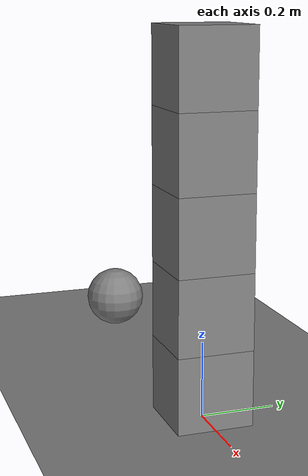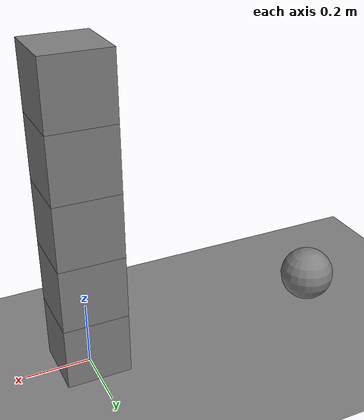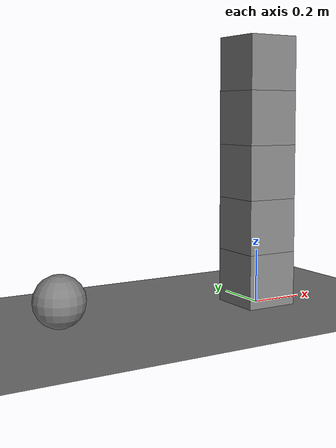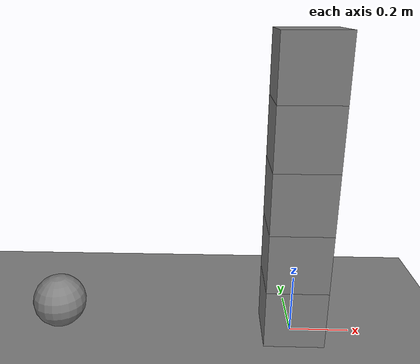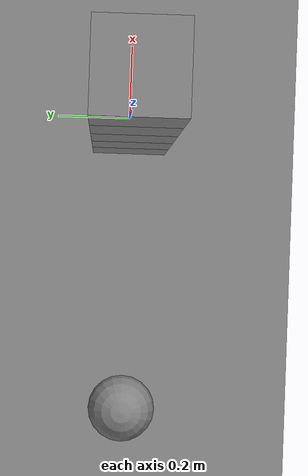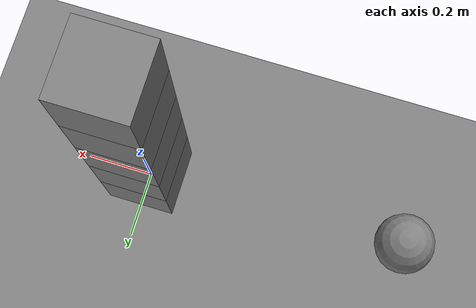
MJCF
<mujoco model="stack_fixture">
  <option timestep="0.002"/>
  <worldbody>
    <geom name="floor" type="plane" size="6 6 0.1" friction="0.6 0.005 0.0001"/>
    <body name="block1" pos="0 0 0.100">
      <freejoint/>
      <geom name="block1" type="box" size="0.1 0.1 0.1" mass="0.5" friction="0.12 0.005 0.0001"/>
    </body>
    <body name="block2" pos="0 0 0.300">
      <freejoint/>
      <geom name="block2" type="box" size="0.1 0.1 0.1" mass="0.5" friction="0.12 0.005 0.0001"/>
    </body>
    <body name="block3" pos="0 0 0.500">
      <freejoint/>
      <geom name="block3" type="box" size="0.1 0.1 0.1" mass="0.5" friction="0.12 0.005 0.0001"/>
    </body>
    <body name="block4" pos="0 0 0.700">
      <freejoint/>
      <geom name="block4" type="box" size="0.1 0.1 0.1" mass="0.5" friction="0.12 0.005 0.0001"/>
    </body>
    <body name="block5" pos="0 0 0.900">
      <freejoint/>
      <geom name="block5" type="box" size="0.1 0.1 0.1" mass="0.5" friction="0.12 0.005 0.0001"/>
    </body>
    <body name="pusher" pos="-0.8 0 0.1">
      <joint name="pusher_slide" type="slide" axis="1 0 0" limited="true" range="0 1.2"/>
      <geom name="pusher" type="sphere" size="0.09" mass="4.0" friction="0.3 0.005 0.0001"/>
    </body>
  </worldbody>
  <actuator>
    <velocity name="pusher_drive" joint="pusher_slide" kv="200" forcelimited="true" forcerange="-100 100"/>
  </actuator>
  <keyframe>
    <key name="start" ctrl="0.8"/>
  </keyframe>
</mujoco>
